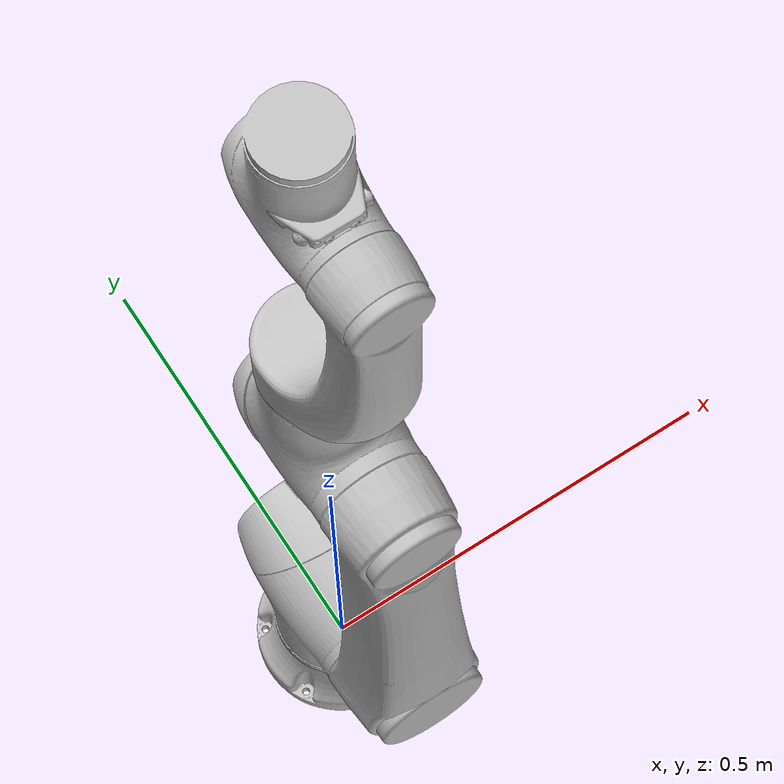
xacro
<robot
  name="elfin10" xmlns:xacro="http://www.ros.org/wiki/xacro">

  <xacro:include filename="$(find elfin_description)/urdf/materials.xacro" />

  <xacro:include filename="$(find elfin_description)/urdf/elfin_robot.gazebo" />

  <xacro:include filename="$(find elfin_description)/urdf/elfin_transmission.xacro" />

  <xacro:property name="PI" value="3.1415926535897931"/>

  <xacro:property name="density" value="3.09"/>

  <link name="world"/>

  <joint name="world_base" type="fixed">
    <origin
      xyz="0 0 0"
      rpy="0 0 -1.5708" />
    <parent
      link="world" />
    <child
      link="elfin_base_link" />
  </joint>

   <link name="elfin_base_link"/>

  <joint name="elfin_base_joint" type="fixed">
    <origin
      xyz="0 0 0"
      rpy="0 0 ${PI/2}" />
    <parent
      link="elfin_base_link" />
    <child
      link="elfin_base" />
  </joint>

  <link
    name="elfin_base">
    <inertial>
      <origin
        xyz="-0.00226511349377665 4.35718066723588E-06 0.0325128562537015"
        rpy="0 0 0" />
      <mass
        value="1.66727740473724" />
      <inertia
        ixx="0.004269288474386"
        ixy="6.02518130623876E-08"
        ixz="-6.92087963593712E-05"
        iyy="0.00385585336301628"
        iyz="-5.51423740998761E-08"
        izz="0.0068204473327682" />
    </inertial>
    <visual>
      <origin
        xyz="0 0 0"
        rpy="0 0 0" />
      <geometry>
        <mesh
          filename="package://elfin_description/meshes/elfin10/elfin_base.STL" />
      </geometry>
      <material
        name="">
        <color
          rgba="0.752941176470588 0.752941176470588 0.752941176470588 1" />
      </material>
    </visual>
    <collision>
      <origin
        xyz="0 0 0"
        rpy="0 0 0" />
      <geometry>
        <mesh
          filename="package://elfin_description/meshes/elfin10/elfin_base.STL" />
      </geometry>
    </collision>
  </link>
  <link
    name="elfin_link1">
    <inertial>
      <origin
        xyz="7.61162863471406E-07 -0.00300107309756385 -0.0432743915921636"
        rpy="0 0 0" />
      <mass
        value="6.3589066662676" />
      <inertia
        ixx="0.0391771076676677"
        ixy="5.46819690041203E-08"
        ixz="4.18972540516346E-07"
        iyy="0.0381555138034643"
        iyz="0.00661206821297882"
        izz="0.0211340101406971" />
    </inertial>
    <visual>
      <origin
        xyz="0 0 0"
        rpy="0 0 0" />
      <geometry>
        <mesh
          filename="package://elfin_description/meshes/elfin10/elfin_link1.STL" />
      </geometry>
      <material
        name="">
        <color
          rgba="0.752941176470588 0.752941176470588 0.752941176470588 1" />
      </material>
    </visual>
    <collision>
      <origin
        xyz="0 0 0"
        rpy="0 0 0" />
      <geometry>
        <mesh
          filename="package://elfin_description/meshes/elfin10/elfin_link1.STL" />
      </geometry>
    </collision>
  </link>
  <joint
    name="elfin_joint1"
    type="revolute">
    <origin
      xyz="0 0 0.26"
      rpy="0 0 0" />
    <parent
      link="elfin_base" />
    <child
      link="elfin_link1" />
    <axis
      xyz="0 0 1" />
    <limit
      lower="-3.14"
      upper="3.14"
      effort="420"
      velocity="1.57" />
  </joint>
  <link
    name="elfin_link2">
    <inertial>
      <origin
        xyz="-1.29217317440473E-07 0.204406209458582 0.145205671136993"
        rpy="0 0 0" />
      <mass
        value="5.51072381215317" />
      <inertia
        ixx="0.140886684844275"
        ixy="-1.98882818733046E-05"
        ixz="1.28793862225363E-06"
        iyy="0.00904523320332792"
        iyz="0.00556623571013066"
        izz="0.143882970137024" />
    </inertial>
    <visual>
      <origin
        xyz="0 0 0"
        rpy="0 0 0" />
      <geometry>
        <mesh
          filename="package://elfin_description/meshes/elfin10/elfin_link2.STL" />
      </geometry>
      <material
        name="">
        <color
          rgba="0.752941176470588 0.752941176470588 0.752941176470588 1" />
      </material>
    </visual>
    <collision>
      <origin
        xyz="0 0 0"
        rpy="0 0 0" />
      <geometry>
        <mesh
          filename="package://elfin_description/meshes/elfin10/elfin_link2.STL" />
      </geometry>
    </collision>
  </link>
  <joint
    name="elfin_joint2"
    type="revolute">
    <origin
      xyz="0 0 0"
      rpy="1.5708 0 0" />
    <parent
      link="elfin_link1" />
    <child
      link="elfin_link2" />
    <axis
      xyz="0 0 1" />
    <limit
      lower="-2.35"
      upper="2.35"
      effort="420"
      velocity="1.57" />
  </joint>
  <link
    name="elfin_link3">
    <inertial>
      <origin
        xyz="0.0357493010718184 -2.74303992683623E-06 -0.00441107040289549"
        rpy="0 0 0" />
      <mass
        value="3.25128088148268" />
      <inertia
        ixx="0.00712273850158261"
        ixy="4.14573354600121E-07"
        ixz="-0.00240614658407673"
        iyy="0.0131139013038093"
        iyz="-1.53858261863385E-07"
        izz="0.0123861174875263" />
    </inertial>
    <visual>
      <origin
        xyz="0 0 0"
        rpy="0 0 0" />
      <geometry>
        <mesh
          filename="package://elfin_description/meshes/elfin10/elfin_link3.STL" />
      </geometry>
      <material
        name="">
        <color
          rgba="0.752941176470588 0.752941176470588 0.752941176470588 1" />
      </material>
    </visual>
    <collision>
      <origin
        xyz="0 0 0"
        rpy="0 0 0" />
      <geometry>
        <mesh
          filename="package://elfin_description/meshes/elfin10/elfin_link3.STL" />
      </geometry>
    </collision>
  </link>
  <joint
    name="elfin_joint3"
    type="revolute">
    <origin
      xyz="0 0.48 0"
      rpy="-3.1416 0 1.5708" />
    <parent
      link="elfin_link2" />
    <child
      link="elfin_link3" />
    <axis
      xyz="0 0 1" />
    <limit
      lower="-2.61"
      upper="2.61"
      effort="200"
      velocity="1.57" />
  </joint>
  <link
    name="elfin_link4">
    <inertial>
      <origin
        xyz="3.8972274666868E-06 -0.065883038527668 0.300149807420176"
        rpy="0 0 0" />
      <mass
        value="2.45076028364132" />
      <inertia
        ixx="0.0366043963749035"
        ixy="2.14481800816891E-07"
        ixz="1.74370308297691E-06"
        iyy="0.0331005868546169"
        iyz="0.00876542795872678"
        izz="0.00689303506560623" />
    </inertial>
    <visual>
      <origin
        xyz="0 0 0"
        rpy="0 0 0" />
      <geometry>
        <mesh
          filename="package://elfin_description/meshes/elfin10/elfin_link4.STL" />
      </geometry>
      <material
        name="">
        <color
          rgba="0.752941176470588 0.752941176470588 0.752941176470588 1" />
      </material>
    </visual>
    <collision>
      <origin
        xyz="0 0 0"
        rpy="0 0 0" />
      <geometry>
        <mesh
          filename="package://elfin_description/meshes/elfin10/elfin_link4.STL" />
      </geometry>
    </collision>
  </link>
  <joint
    name="elfin_joint4"
    type="revolute">
    <origin
      xyz="0 0 0"
      rpy="1.5708 0 1.5708" />
    <parent
      link="elfin_link3" />
    <child
      link="elfin_link4" />
    <axis
      xyz="0 0 1" />
    <limit
      lower="-3.14"
      upper="3.14"
      effort="200"
      velocity="1.57" />
  </joint>
  <link
    name="elfin_link5">
    <inertial>
      <origin
        xyz="5.37084413168812E-06 -0.0262437975997385 -0.00353971828905618"
        rpy="0 0 0" />
      <mass
        value="1.39234539037872" />
      <inertia
        ixx="0.0033625821599978"
        ixy="2.21090591006111E-07"
        ixz="-5.5969383984273E-07"
        iyy="0.00182229285631246"
        iyz="0.000639319386824375"
        izz="0.00292731816323284" />
    </inertial>
    <visual>
      <origin
        xyz="0 0 0"
        rpy="0 0 0" />
      <geometry>
        <mesh
          filename="package://elfin_description/meshes/elfin10/elfin_link5.STL" />
      </geometry>
      <material
        name="">
        <color
          rgba="0.752941176470588 0.752941176470588 0.752941176470588 1" />
      </material>
    </visual>
    <collision>
      <origin
        xyz="0 0 0"
        rpy="0 0 0" />
      <geometry>
        <mesh
          filename="package://elfin_description/meshes/elfin10/elfin_link5.STL" />
      </geometry>
    </collision>
  </link>
  <joint
    name="elfin_joint5"
    type="revolute">
    <origin
      xyz="0 0 0.52"
      rpy="-1.5708 0 0" />
    <parent
      link="elfin_link4" />
    <child
      link="elfin_link5" />
    <axis
      xyz="0 0 1" />
    <limit
      lower="-2.56"
      upper="2.56"
      effort="69"
      velocity="1.57" />
  </joint>
  <link
    name="elfin_link6">
    <inertial>
      <origin
        xyz="-8.45231478862452E-06 -0.000388392932234965 0.144636177508013"
        rpy="0 0 0" />
      <mass
        value="0.297803050744826" />
      <inertia
        ixx="0.000151919382929214"
        ixy="-1.8598001023495E-09"
        ixz="6.95653480101813E-08"
        iyy="0.000155217204136347"
        iyz="-6.63866631888914E-08"
        izz="0.00027009779924127" />
    </inertial>
    <visual>
      <origin
        xyz="0 0 0"
        rpy="0 0 0" />
      <geometry>
        <mesh
          filename="package://elfin_description/meshes/elfin10/elfin_link6.STL" />
      </geometry>
      <material
        name="">
        <color
          rgba="0.752941176470588 0.752941176470588 0.752941176470588 1" />
      </material>
    </visual>
    <collision>
      <origin
        xyz="0 0 0"
        rpy="0 0 0" />
      <geometry>
        <mesh
          filename="package://elfin_description/meshes/elfin10/elfin_link6.STL" />
      </geometry>
    </collision>
  </link>
  <joint
    name="elfin_joint6"
    type="revolute">
    <origin
      xyz="0 0 0"
      rpy="1.5708 0 0" />
    <parent
      link="elfin_link5" />
    <child
      link="elfin_link6" />
    <axis
      xyz="0 0 1" />
    <limit
      lower="-3.14"
      upper="3.14"
      effort="69"
      velocity="1.57" />
  </joint>
  <link
    name="elfin_end_link"/>
  <joint
    name="elfin_end_joint"
    type="fixed">
    <origin
      xyz="0 0.0 0.1735"
      rpy="0 0 0" />
    <parent
      link="elfin_link6" />
    <child
      link="elfin_end_link" />
    <axis
      xyz="0 0 0" />
  </joint>

  <link name="elfin_dummy_gripper"/>

  <joint name="elfin_dummy_joint" type="fixed">
    <origin
      xyz="0 0.109 0"
      rpy="${-PI/2} ${-PI/2} 0" />
    <parent
      link="elfin_link6" />
    <child
      link="elfin_dummy_gripper" />
  </joint>

</robot>

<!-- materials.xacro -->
<robot xmlns:xacro="http://www.ros.org/wiki/xacro">

  <material name="black">
    <color rgba="0.0 0.0 0.0 1.0"/>
  </material>

  <material name="blue">
    <color rgba="0.0 0.0 0.8 1.0"/>
  </material>

  <material name="green">
    <color rgba="0.0 0.8 0.0 1.0"/>
  </material>

  <material name="grey">
    <color rgba="0.2 0.2 0.2 1.0"/>
  </material>

  <material name="orange">
    <color rgba="${255/255} ${108/255} ${10/255} 1.0"/>
  </material>

  <material name="brown">
    <color rgba="${222/255} ${207/255} ${195/255} 1.0"/>
  </material>

  <material name="red">
    <color rgba="0.8 0.0 0.0 1.0"/>
  </material>

  <material name="white">
    <color rgba="1.0 1.0 1.0 1.0"/>
  </material>

  <material name="metal">
    <color rgba="0.768627450980392 0.749019607843137 0.729411764705882 1" />
  </material>

  <material name="metal_grey">
    <color rgba="0.501960784313725 0.501960784313725 0.501960784313725 1" />
  </material>

  <material name="metal_white">
    <color rgba="0.866666666666667 0.866666666666667 0.890196078431373 1" />
  </material>

</robot>
